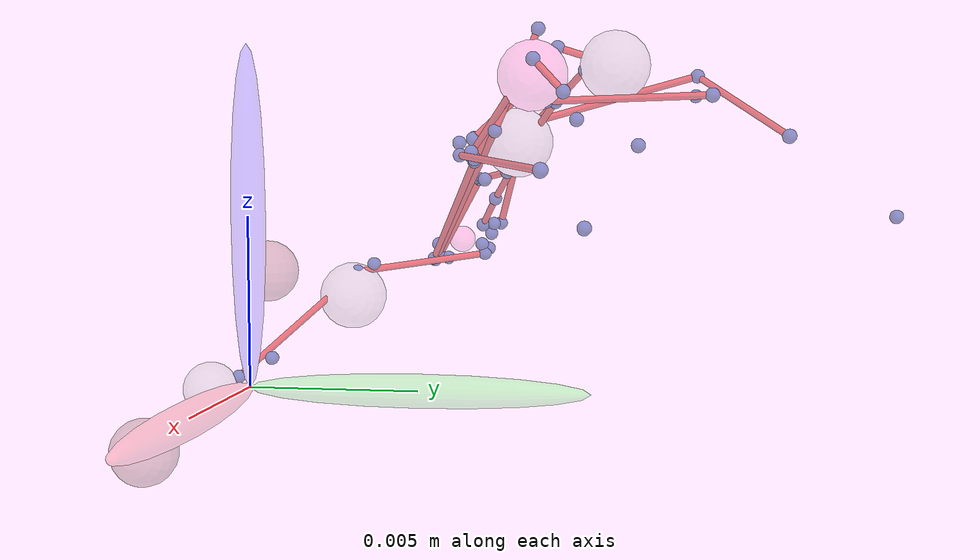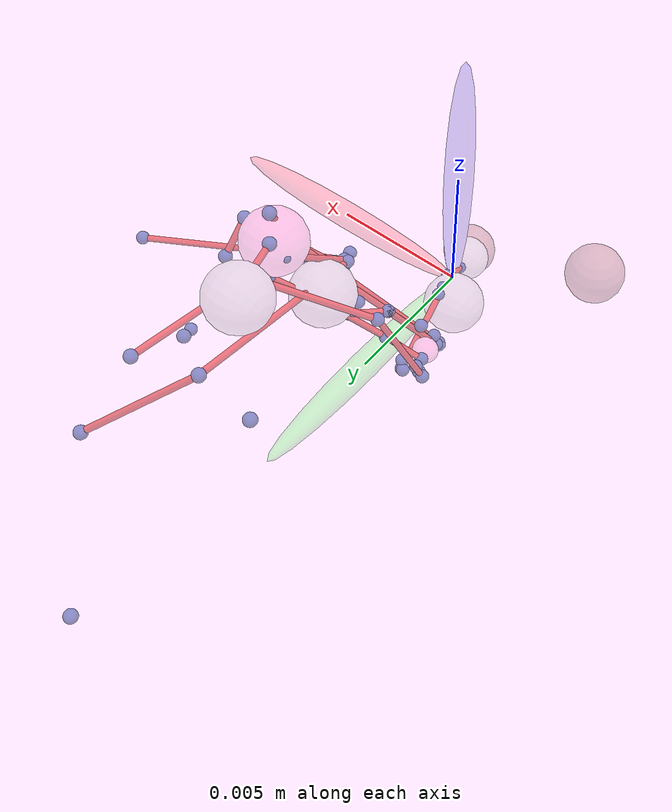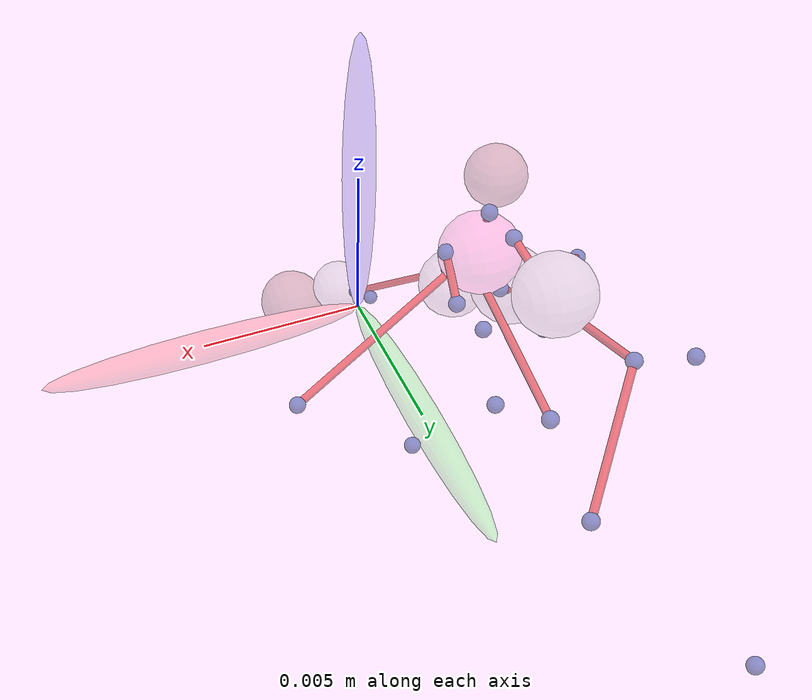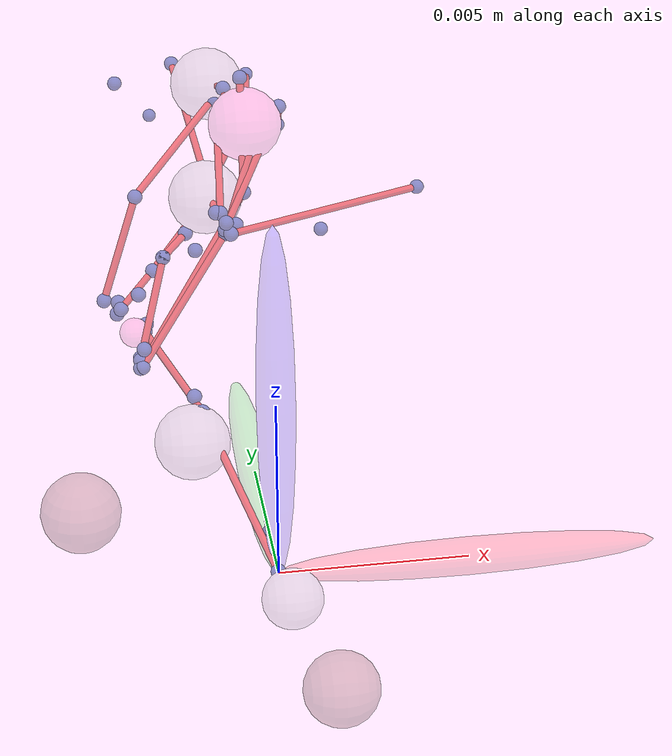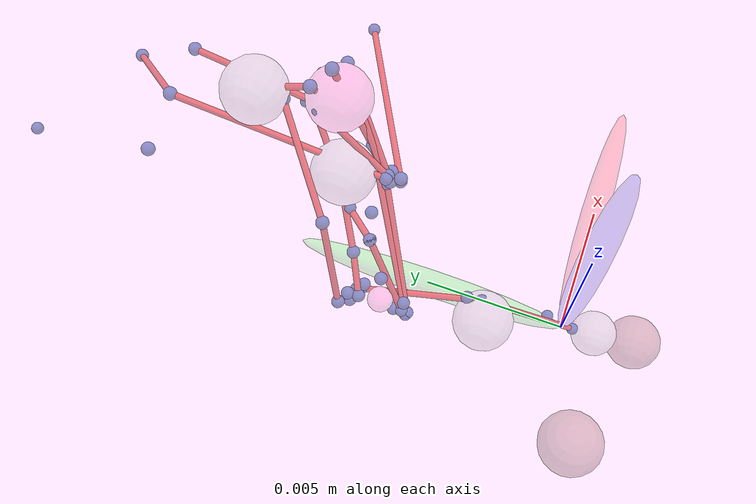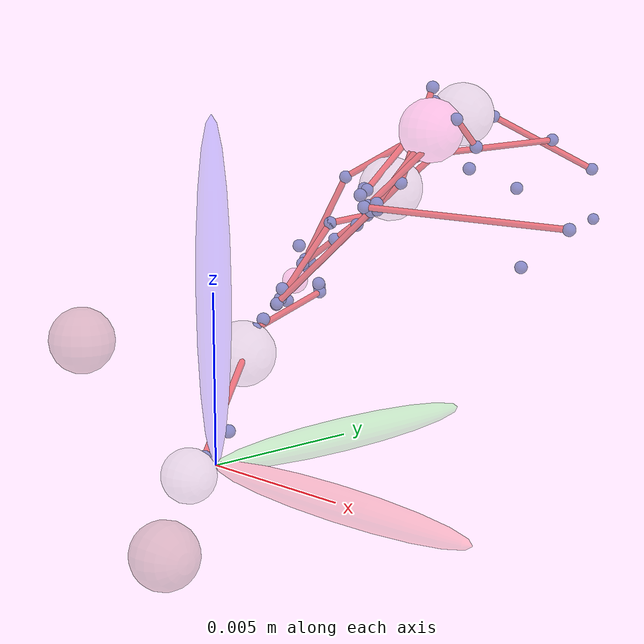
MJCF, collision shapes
<mujoco model="mouse">
	<!--This stuff can all be left alone-->
	<compiler angle="radian">
		<lengthrange mode="muscle"/>
	</compiler>
	<default>
	<geom contype="0" conaffinity="0"/>
	<joint limited="true" damping="0.5" armature=".1" stiffness="0"></joint>
	<tendon width="0.005" rgba=".95 .3 .3 1" limited="false"></tendon>
	</default>
	<option timestep="0.002"/>
	<size njmax="1000" nconmax="400" nkey="1" nuser_jnt="1"/>
	<visual>
		<scale framelength="0.5" framewidth="0.01"/>
	</visual>
	<asset>
		<material name="target" rgba="0.59999999999999998 0.29999999999999999 0.29999999999999999 0.29999999999999999"/>
		<texture type="skybox" builtin="gradient" rgb1="1 1 1" rgb2="0.6 0.8 1" width="256" height="1536"/>
		<texture name="grid" type="2d" builtin="checker" width="512" height="512" rgb1=".1 .2 .3" rgb2=".2 .3 .4"/>
		<material name="grid" texture="grid" texrepeat="1 1" texuniform="true" reflectance=".2"/>
		<mesh file="/root/vast/eric/vnl-ray/vnl_ray/mouse_forelimb/assets_mousereach/mesh/Bones_Scapula.stl"/>
		<mesh file="/root/vast/eric/vnl-ray/vnl_ray/mouse_forelimb/assets_mousereach/mesh/Bone_Segmentation_Humerus.stl"/>
		<mesh file="/root/vast/eric/vnl-ray/vnl_ray/mouse_forelimb/assets_mousereach/mesh/Bone_Segmentation_Segment_8.stl"/>
		<mesh file="/root/vast/eric/vnl-ray/vnl_ray/mouse_forelimb/assets_mousereach/mesh/Bone_Segments_Hand.stl"/>
		<mesh file="/root/vast/eric/vnl-ray/vnl_ray/mouse_forelimb/assets_mousereach/mesh/Bone_Segments_Radius.stl"/>
		<mesh file="/root/vast/eric/vnl-ray/vnl_ray/mouse_forelimb/assets_mousereach/mesh/Bone_Segments_Ulna.stl"/>
    </asset>
	<!--This stuff can all be left alone-->
	<worldbody>
	<light directional="true"/>
	<body name="ground" euler="0 0 0">
		<camera name="my_camera" mode="track" pos="-0.001 .004 0.05"/>
		<camera name="my_camera1" mode="track" pos="-0.001 .004 0.05"/>
		<geom name="target" type="sphere" size="0.001" material="target" pos="-0.005 -0.001 .003" contype="0" conaffinity="0"/>
		<geom type="ellipsoid" size=".0005" rgba="1 0 0 .1" fromto="0 0 0 .01 0 0"/>
		<geom type="ellipsoid" size=".0005" rgba="0 1 0 .1" fromto="0 0 0 0 .01 0"/>
		<geom type="ellipsoid" size=".0005" rgba="0 0 1 .1" fromto="0 0 0 0 0 .01"/>
		<!--EOB Clavicle-->
		<body name="clavicle" pos="-.012 0 .008" euler="1.5707 1.5707 0">'
			<joint name="ground_clavicle" pos="0 0 0" axis="0 0 1" range="1e-100 1e-99" limited="true"/>
			<!--Mesh Geom-->
			<geom type="mesh" mesh="Bone_Segmentation_Segment_8" pos="0 0 0"/>
			<!--Inertia Values-->
			<inertial pos="0 0 0" mass="0.000035" diaginertia="0.000004 0.000004 0.000004"/>

			<!--Attatchment Sites-->
			<site name="Pec_Midpoint_01" pos="0.009620 -0.000238 0.012724" rgba=".1 .2 .6 .5" size="0.0002"/>
			<site name="Pec_Origin_Clav" pos="0.011328 -0.000958 0.013171" rgba=".1 .2 .6 .5" size="0.0002"/>
			<site name="Deltoid_A-P2" pos="0.008468 0.001394 0.013248"     rgba=".1 .2 .6 .5" size="0.0002"/>
			<site name="Deltoid_A_Origin" pos="0.009300 0.000500 0.013300" rgba=".1 .2 .6 .5" size="0.0002"/>

		</body>
		<!--SOB Scapula-->

		<body name="scapula" pos="-.012 0 .008" euler="1.5707 1.5707 0">
			<joint name="ground_scapula" pos="0 0 0" axis="0 1 0" range="1e-100 1e-99" limited="true"/>
			<!--Mesh Geom-->

			<geom type="mesh" mesh="Bones_Scapula" pos="0 0 0"/>
			<!--Inertia Values-->
			<inertial pos="0.0106 0.0013 0.0115" mass="0.0003" diaginertia="5.3e-06 5.3e-06 5.3e-06"/>
			<site name="interial_center_scapula" pos="0.0106 0.0013 0.0115" rgba=".6 .6 .6 .1" size="0.001"/>

			<!--Attatchment Sites-->
			<site name="Biceps_Long_Head-P3" pos="0.00849576 0.00228906 0.01221302" rgba=".1 .2 .6 .5" size="0.0002"/>
			<site name="Triceps_Long_Head_Origin" pos="0.00976038 0.0011741157 0.01157652" rgba=".1 .2 .6 .5" size="0.0002"/>
			<site name="Deltoid_M_Origin" pos="0.008692938 0.001175186431 0.011578824" rgba=".1 .2 .6 .5" size="0.0002"/>
			<site name="Subscapularis_SuperiorHead_Origin" pos="0.0133000006 0.000399999 0.012899997" rgba=".1 .2 .6 .5" size="0.0002"/>
			<site name="Infraspinatus_P1" pos="0.008999998681247234 0.0018000002019107342 0.011800001375377178" rgba=".1 .2 .6 .5" size="0.0002"/>
			<site name="Infraspinatus_Origin" pos="0.010599999688565731 0.0013000000035390258 0.011599999852478504" rgba=".1 .2 .6 .5" size="0.0002"/>
			<site name="Latissimus_Dorsi-P1" pos="0.015354085180824845 -0.000711068046827175 0.012869914043387326" rgba=".1 .2 .6 .5" size="0.0002"/>
			<site name="Latissimus_Dorsi-P2" pos="0.01290415530596433 0.0010275014401610262 0.010721486942517478" rgba=".1 .2 .6 .5" size="0.0002"/>
			<site name="Latissimus_Dorsi_Caudal1-P2" pos="0.012865897215296856 0.0005347583686900808 0.00906724582362393" rgba=".1 .2 .6 .5" size="0.0002"/>
			<site name="Latissimus_Dorsi_Caudal-P3" pos="0.018541318450470013 -0.002960151615581659 0.010381887523270792" rgba=".1 .2 .6 .5" size="0.0002"/>
			<site name="Pectoralis_Major-P1" pos="0.009110993164991227 -0.001588479272576734 0.017209259523298364" rgba=".1 .2 .6 .5" size="0.0002"/>
			<site name="Pectoralis_Major_Posterior-P1" pos="0.009987452388676828 -0.0031334550146689504 0.014596141558244659" rgba=".1 .2 .6 .5" size="0.0002"/>

			<body name="humerus" pos="0.0035 -0.006    0" euler="0 0 .8">
				<!--it might be smart to replace this with a balljoint-->
				<!-- Replacing shoulder joints with a ball joint -->
				<joint name="sh_elv" pos="0.0084 0.0014 0.0123" axis=".001 .001 .5" range="-2 1" ref="0" limited="true"/>
				<joint name="sh_extension" pos="0.0084 0.0014 0.0123" axis=".001 .5 .001" range="-2.3 -1" ref="-1" limited="true"/>
				<joint name="sh_rotation"  pos="0.0084 0.0014 0.0123" axis=".5 .001 .001" range="-2 -1" ref="-1" limited="true"/>

				<site name="shoulder_joint_viz_large" pos="0.0084 0.0014 0.0123" rgba="1 .2 .6 .2" size="0.0010"/>
				<site name="shoulder_joint_viz_small" pos="0.0084 0.0014 0.0123" rgba="1 .2 .6 .6" size="0.0005"/>
				<inertial pos="0.0067 0.0005 0.01111" mass="0.0001258" diaginertia="5.3e-06 5.3e-06 5.3e-06"/>
				<site name="interial_center_humerus" pos="0.0067 0.0005 0.01111" rgba=".6 .6 .6 .1" size="0.001"/>
				<geom type="mesh" mesh="Bone_Segmentation_Humerus" pos="0 0 0"/>

					<!--Attatchment Sites-->
					<site name="Pec_Insertion" pos="0.00561727136476425 0.001217306443744107 0.011801347380847517" rgba=".1 .2 .6 .5" size="0.0002"/>
					<site name="Biceps_Short_Head-P2" pos="0.005457445188443044 0.0010026753845241115 0.011513268213634631" rgba=".1 .2 .6 .5" size="0.0002"/>
					<site name="Biceps_Short_Head-P3" pos="0.008543091337906053 0.0017365774677492347 0.01275593949959777" rgba=".1 .2 .6 .5" size="0.0002"/>
					<site name="Biceps_Short_Head-P4" pos="0.009123790016965644 0.0014539673238508494 0.012237457904057045" rgba=".1 .2 .6 .5" size="0.0002"/>
					<site name="Biceps_Long_Head-P2" pos="0.006544022925768731 0.0011131667877239196 0.012102954121479437" rgba=".1 .2 .6 .5" size="0.0002"/>
					<site name="Deltoid_A_Insertion" pos="0.005499999038875103 0.0012000000569969416 0.011500000022351742" rgba=".1 .2 .6 .5" size="0.0002"/>
					<site name="Triceps_Short_Head_Origin" pos="0.00847404321673863 0.0016215078770896688 0.01162284825956432" rgba=".1 .2 .6 .5" size="0.0002"/>
					<site name="Triceps_Long_Head-P2" pos="0.006760856413387129 0.00071579430721963 0.009198208841793537" rgba=".1 .2 .6 .5" size="0.0002"/>
					<site name="MaybeBrachialis_InnerHead-P2" pos="0.0050000012852251 0.000699999975040555 0.009800001047551632" rgba=".1 .2 .6 .5" size="0.0002"/>
					<site name="MaybeBrachialis_InnerHead-P3" pos="0.005800004117190838 0.000200000499026 0.010500005446374416" rgba=".1 .2 .6 .5" size="0.0002"/>
					<site name="MaybeBrachialis_InnerHead-P4" pos="0.0083177142660228 0.0004515395866104832 0.0120205531656216" rgba=".1 .2 .6 .5" size="0.0002"/>
					<site name="MaybeBrachialis_OuterrHead-P2" pos="0.004999999888241291 0.000699999975040555 0.009800000116229057" rgba=".1 .2 .6 .5" size="0.0002"/>
					<site name="MaybeBrachialis_OuterrHead-P3" pos="0.008237797749953146 0.001392518913278212 0.011701324054897" rgba=".1 .2 .6 .5" size="0.0002"/>
					<site name="Anconeus_Origin" pos="0.005199999548494816 0.0005000000237487257 0.010699999518692493" rgba=".1 .2 .6 .5" size="0.0002"/>
					<site name="Deltoid_M_Insertion" pos="0.005877213031888123 0.00149081944152008 0.01138991191467427" rgba=".1 .2 .6 .5" size="0.0002"/>
					<site name="Short_Anconeus_Origin" pos="0.0036000004038214684 -0.0008999999845400453 0.009099998511373997" rgba=".1 .2 .6 .5" size="0.0002"/>
					<site name="Subscapularis_SuperiorHead_Insertion" pos="0.00815858583811968 0.0006186340862514017 0.012345906015916785" rgba=".1 .2 .6 .5" size="0.0002"/>
					<site name="Infraspinatus_Insertion" pos="0.008299999870359898 0.0016000003088265657 0.01190000120550394" rgba=".1 .2 .6 .5" size="0.0002"/>
					<site name="PronatorTeres-P2" pos="0.003569194769806286 -0.0006697321755868291 0.009269772394358975" rgba=".1 .2 .6 .5" size="0.0002"/>
					<site name="FlexorCarpiRadialis-P3" pos="0.003424910947835591 -0.0009275106517860898 0.009228797150415774" rgba=".1 .2 .6 .5" size="0.0002"/>
					<site name="Brachioradialis-P2" pos="0.004030140856132736 0.0006478051835343344 0.009059890273788729" rgba=".1 .2 .6 .5" size="0.0002"/>
					<site name="Triceps_Lateral_Head_Origin" pos="0.00652066298448895 0.0002498557758622723 0.010981274063174208" rgba=".1 .2 .6 .5" size="0.0002"/>
					<site name="Triceps_Lateral_Head-P2" pos="0.004877396636357773 -2.0990597736210165e-05 0.00953787417542352" rgba=".1 .2 .6 .5" size="0.0002"/>
					<site name="Latissimus_Dorsi_Rostral-P3" pos="0.005898000206798315 0.0014979999978095293 0.011264000087976456" rgba=".1 .2 .6 .5" size="0.0002"/>
					<site name="Latissimus_Dorsi_Caudal1-P1" pos="0.005530273564883156 0.0016819697092966763 0.01149872552021617" rgba=".1 .2 .6 .5" size="0.0002"/>
					<site name="Pectoralis_Major-P2" pos="0.00530226763976073 0.0014110375999547425 0.011624181595743514" rgba=".1 .2 .6 .5" size="0.0002"/>
					<site name="Pectoralis_Major_Posterior-P2" pos="0.0055313255098350875 0.0010215392755078267 0.011759959498415538" rgba=".1 .2 .6 .5" size="0.0002"/>

					<body name="ulna" pos=".0001 0 .0002">
						<geom type="mesh" mesh="Bone_Segments_Ulna" pos="0 0 0"/>

						<inertial pos="-0.0003 0.001 0.0099" mass=" 0.00071" diaginertia="7.1e-6 7.1e-6 7.1e-6"/>
						<site name="interial_center_ulna" pos="-0.0003 .001 0.0099" rgba=".6 .6 .6 .1" size="0.001"/>

						<joint name="elbow" pos="0.0031 -.0001 0.0087" axis=".09 .34 -0.51822258" range="-.7 1.55" limited="true" damping="0.1"/>
						<site name="elbow_joint_viz_large" pos="0.0031 -.0001 0.0087" rgba="1 .2 .6 .2" size="0.0004"/>
						<site name="elbow_joint_viz_small" pos="0.0031 -.0001 0.0087" rgba="1 .2 .6 .6" size="0.0002"/>
						<!--Attatchment Sites-->
						<site name="Biceps_Short_Head_Insertion" pos="0.002061821016384958 9.7561118761497e-05 0.0088274838632424" rgba=".1 .2 .6 .5" size="0.0002"/>
						<site name="Biceps_Long_Head-P1" pos="0.00205791103630157 4.8790457865474646e-05 0.008773969929530771" rgba=".1 .2 .6 .5" size="0.0002"/>
						<site name="Triceps_Short_Head_Insertion" pos="0.004079452036488156 -0.0004475283451367 0.008348666849508" rgba=".1 .2 .6 .5" size="0.0002"/>
						<site name="Triceps_Long_Head_Insertion" pos="0.004194978794163139 -0.0005704097863427328 0.00797751410992" rgba=".1 .2 .6 .5" size="0.0002"/>
						<site name="MaybeBrachialis_InnerHead-P1" pos="0.0022711976820488228 5.86679600253e-05 0.00879040774739899" rgba=".1 .2 .6 .5" size="0.0002"/>
						<site name="Anconeus-Insertion" pos="0.002399999648332596 -0.0001999999803956598 0.008800002746284008" rgba=".1 .2 .6 .5" size="0.0002"/>
						<site name="Short_Anconeus_Insertion" pos="0.003800000064074993 -0.000599999912083149 0.008299999870359898" rgba=".1 .2 .6 .5" size="0.0002"/>

					<body name="radius" pos="0 0 0">
						<geom type="mesh" mesh="Bone_Segments_Radius" pos="0 0 0"/>

						<inertial pos="-0.0003 0.0014 0.0103" mass=" 0.00071" diaginertia="5.3e-06 5.3e-06 5.3e-06"/>
						<site name="interial_center_radius" pos="-0.0003 .001 0.0099" rgba=".6 .6 .6 .1" size="0.0008"/>

						<!--Attatchment Sites-->
						<site name="MaybeBrachialis_OuterrHead-P1" pos="0.002499999944 0.00030000001424924 0.008899999782443047" rgba=".1 .2 .6 .5" size="0.0002"/>
						<site name="PronatorTeres-P1" pos="0.00087550107568 0.0011853275020137226 0.010050151513765163" rgba=".1 .2 .6 .5" size="0.0002"/>
						<site name="FlexorCarpiRadialis-P2" pos="0.0003950029599006921 0.00137263 0.01020844161142256" rgba=".1 .2 .6 .5" size="0.0002"/>
						<site name="Brachioradialis-P1" pos="-0.0029278056764625027 0.00126620712543319 0.011637220667654609" rgba=".1 .2 .6 .5" size="0.0002"/>
						<site name="Triceps_Lateral_Head_Insertion" pos="0.003819476250 -0.00023364176770 0.00839947706293405" rgba=".1 .2 .6 .5" size="0.0002"/>

						<body name="hand" pos="0 0 0">
							<geom type="mesh" mesh="Bone_Segments_Hand" pos="0 0 0"/>
							<site name="FlexorCarpiRadialis-P1" pos="-0.004015558277169498 0.001582127229932083 0.011737779242925817" rgba=".1 .2 .6 .5" size="0.0002"/>
							<geom name="finger_tip" type="sphere" size="0.001" material="target" pos="-0.0071999999999999998 0.0019 0.012999999999999999" contype="0" conaffinity="0"/>
							<inertial pos="-0.0048 0.0019 0.012" mass=" 0.00071" diaginertia="7e-07 7e-07 7e-07"/>
							<site name="interial_center_hand" pos="-0.0048 0.0019 0.012" rgba=".6 .6 .6 .1" size="0.0008"/>
						<!--EOB Hand-->
					</body>
					<!--EOB Radius-->
				</body>
				<!--EOB Ulna-->
			</body>
			<!--EOB Humerus-->
		</body>
		<!--EOB Scapula-->
	</body>
	<!--EOB Ground-->
	</body>
</worldbody>
<tendon>
	<spatial width=".0001" rgba=".9 0 0 .5" name="Biceps_Long_Head" springlength="-1">
		<site site="Biceps_Long_Head-P1"/>
		<site site="Biceps_Long_Head-P2"/>
		<site site="Biceps_Long_Head-P3"/>
	</spatial>
	<spatial width=".0001" rgba=".9 0 0 .5" name="Biceps_Short_Head" springlength="-1">
		<site site="Biceps_Short_Head_Insertion"/>
		<site site="Biceps_Short_Head-P2"/>
		<site site="Biceps_Short_Head-P3"/>
		<site site="Biceps_Short_Head-P4"/>
	</spatial>
	<spatial width=".0001" rgba=".9 0 0 .5" name="Deltoid_Medial_CHK_MMTARM">
		<site site="Deltoid_A_Insertion"/>
		<site site="Deltoid_A-P2"/>
		<site site="Deltoid_A_Origin"/>
	</spatial>
	<spatial width=".0001" rgba=".9 0 0 .5" name="Triceps_Lat_Head" springlength="-1">
	    <site site="Triceps_Lateral_Head_Origin"/>
        <site site="Triceps_Lateral_Head-P2"/>
        <site site="Triceps_Lateral_Head_Insertion"/>
	</spatial>
	<spatial width=".0001" rgba=".9 0 0 .5" name="Triceps_Long_Head" springlength="-1">
		<site site="Triceps_Long_Head_Insertion"/>
		<site site="Triceps_Long_Head-P2"/>
		<site site="Triceps_Long_Head_Origin"/>
	</spatial>
	<spatial width=".0001" rgba=".9 0 0 .5" name="Brachialis_Proximal_Head" springlength="-1">
		<site site="MaybeBrachialis_InnerHead-P1"/>
		<site site="MaybeBrachialis_InnerHead-P2"/>
		<site site="MaybeBrachialis_InnerHead-P3"/>
		<site site="MaybeBrachialis_InnerHead-P4"/>
	</spatial>
	<spatial width=".0001" rgba=".9 0 0 .5" name="Deltoid_Posterior" springlength="-1">
		<site site="Deltoid_M_Insertion"/>
		<site site="Deltoid_M_Origin"/>
	</spatial>
	<spatial width=".0001" rgba=".9 0 0 .5" name="Subscapularis_SuperiorHead" springlength="-1">
		<site site="Subscapularis_SuperiorHead_Insertion"/>
		<site site="Subscapularis_SuperiorHead_Origin"/>
	</spatial>
	<spatial width=".0001" rgba=".9 0 0 .5" name="Infraspinatus" springlength="-1">
		<site site="Infraspinatus_Insertion"/>
		<site site="Infraspinatus_P1"/>
		<site site="Infraspinatus_Origin"/>
	</spatial>
	<spatial width=".0001" rgba=".9 0 0 .5" name="FlexorCarpiRadialis" springlength="-1">
		<site site="FlexorCarpiRadialis-P1"/>
		<site site="FlexorCarpiRadialis-P2"/>
		<site site="FlexorCarpiRadialis-P3"/>
	</spatial>
	<spatial width=".0001" rgba=".9 0 0 .5" name="Latissimus_Dorsi_Rostral" springlength="-1">
		<site site="Latissimus_Dorsi-P1"/>
		<site site="Latissimus_Dorsi-P2"/>
		<site site="Latissimus_Dorsi_Rostral-P3"/>
	</spatial>
	<spatial width=".0001" rgba=".9 0 0 .5" name="Pectoralis_Major_Anterior" springlength="-1">
		<site site="Pectoralis_Major-P1"/>
		<site site="Pectoralis_Major-P2"/>
	</spatial>
</tendon>
<actuator>
	<muscle name="Biceps_Long_Head_act" tendon="Biceps_Long_Head" lengthrange="0.001 0.02" fpmax=".001" force="1500"/>
	<muscle name="Biceps_Short_Head_act" tendon="Biceps_Short_Head" lengthrange="0.001 0.02" fpmax=".001" force="1500"/>
	<muscle name="Deltoid_Medial_CHK_MMTARM_act" tendon="Deltoid_Medial_CHK_MMTARM" lengthrange="0.001 0.01" fpmax=".001" force="1500"/>
	<muscle name="Triceps_Lat_Head_act" tendon="Triceps_Lat_Head" lengthrange="0.001 0.02" fpmax=".001" force="1500"/>
	<muscle name="Triceps_Long_Head_act" tendon="Triceps_Long_Head" lengthrange="0.001 0.02" fpmax=".001" force="1500"/>
	<muscle name="Brachialis_Proximal_Head_act" tendon="Brachialis_Proximal_Head" lengthrange="0.001 0.01" fpmax=".001" force="1500"/>
	<muscle name="Deltoid_Posterior_act" tendon="Deltoid_Posterior" lengthrange="0.001 0.005" fpmax=".001" force="1500"/>
	<muscle name="Subscapularis_SuperiorHead_act" tendon="Subscapularis_SuperiorHead" lengthrange="0.001 0.01" fpmax=".001" force="1500"/>
	<muscle name="Infraspinatus_act" tendon="Infraspinatus" lengthrange="0.001 0.01" fpmax=".001" force="1500"/>
	<muscle name="FlexorCarpiRadialis_act" tendon="FlexorCarpiRadialis" lengthrange="0.001 0.01" fpmax=".001" force="1500"/>
	<muscle name="Latissimus_Dorsi_Rostral_act" tendon="Latissimus_Dorsi_Rostral" lengthrange="0.001 0.02" fpmax=".001" force="1500"/>
	<muscle name="Pectoralis_Major_Anterior_act" tendon="Pectoralis_Major_Anterior" lengthrange="0.001 0.01" fpmax=".001" force="1500"/>
</actuator>

</mujoco>
